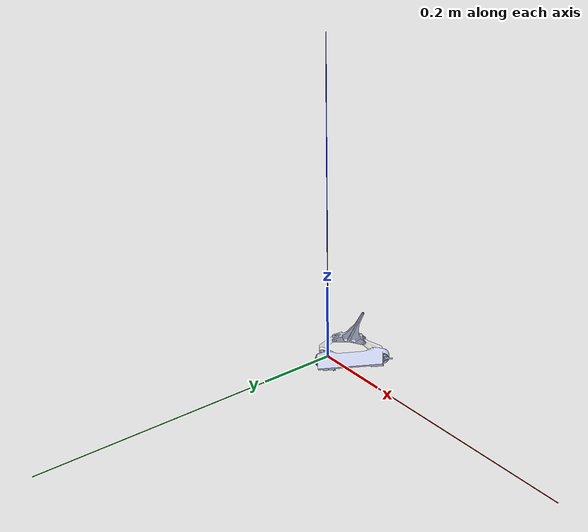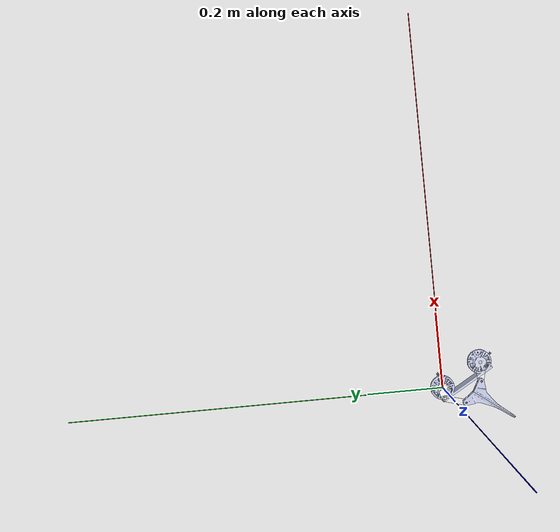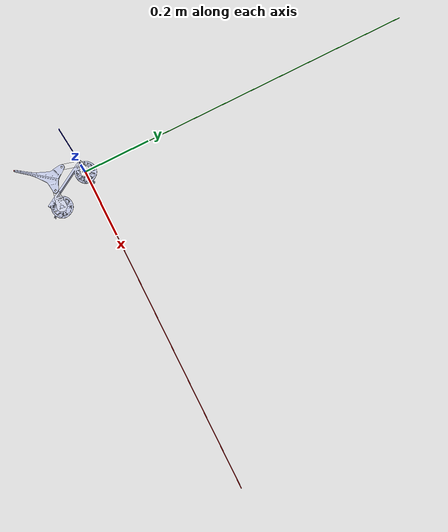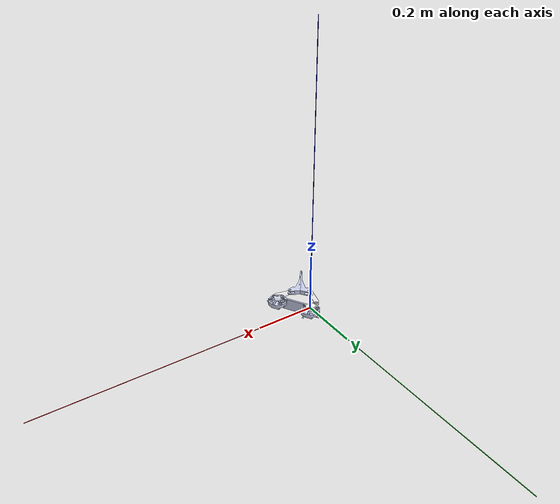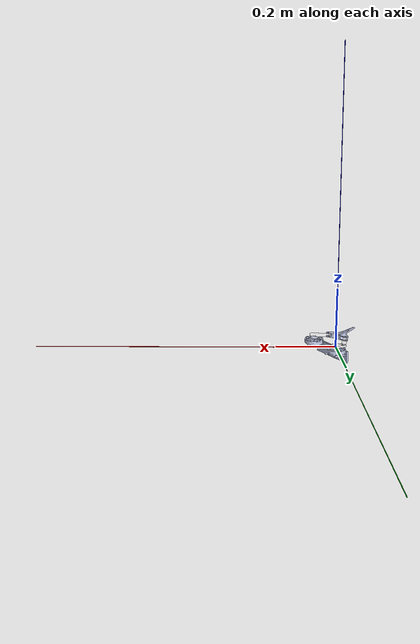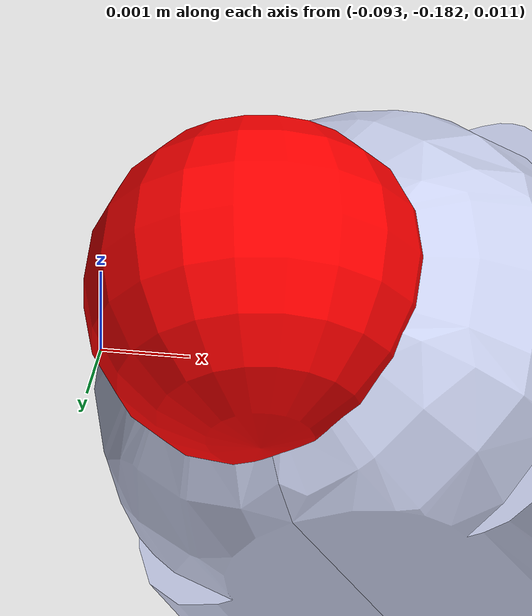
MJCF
<mujoco model="5bar">
  <compiler angle="radian"/>

  <asset>
    <mesh name="base_link" file="base_link.STL"/>
    <mesh name="bd" file="bd.STL"/>
    <mesh name="df" file="df.STL"/>
    <mesh name="cfp_f" file="cfp_f.STL"/>
    <mesh name="ac" file="ac.STL"/>
    <mesh name="cfp_c" file="cfp_c.STL"/>
  </asset>

  <worldbody>
    <geom name="x_axis" type="cylinder" fromto="0 0 0 1 0 0" size="0.001" rgba="1 0 0 1"/>
    <geom name="y_axis" type="cylinder" fromto="0 0 0 0 1 0" size="0.001" rgba="0 1 0 1"/>
    <geom name="z_axis" type="cylinder" fromto="0 0 0 0 0 1" size="0.001" rgba="0 0 1 1"/>
    <geom type="mesh" rgba="0.792157 0.819608 0.933333 1" mesh="base_link"/>
    <body name="bd">
      <inertial pos="-0.00581349 -0.000508622 0.00385706" quat="-0.0302491 0.719801 0.0314276 0.692809" mass="0.0065" diaginertia="1.10165e-06 8.16244e-07 3.27432e-07"/>
      <joint name="1" pos="0 0 0" axis="0 0 1"/>
      <geom type="mesh" rgba="1 1 1 1" mesh="bd"/>
      <body name="df" pos="-0.026459 -0.0023149 0.0085">
        <inertial pos="-0.00699491 -0.0260919 0.00576534" quat="0.561628 0.429951 -0.560398 0.430895" mass="0.0085" diaginertia="2.5096e-06 2.43627e-06 1.39512e-07"/>
        <joint name="2" pos="0 0 0" axis="0 0 1"/>
        <geom type="mesh" rgba="1 1 1 0.32" mesh="df"/>
        <body name="cfp_f" pos="-0.014112 -0.052641 0.009">
          <inertial pos="0.000991822 -0.0371965 -0.00450308" quat="0.594658 0.382345 -0.594827 0.38259" mass="0.024" diaginertia="1.36656e-05 1.29227e-05 1.1416e-06"/>
          <joint name="3" pos="0 0 0" axis="0 0 1"/>
          <geom type="mesh" rgba="0.792157 0.819608 0.933333 1" mesh="cfp_f"/>
          <site name="endeff" size="0.002" pos="-0.05031541 -0.12513065 -0.00450033" rgba="1 0 0 1"/>
        </body>
      </body>
    </body>
    <body name="ac" pos="0.060004 -0.10393 0">
      <inertial pos="-0.0139838 0.00122344 0.00911879" quat="0.0293969 0.738096 -0.0322259 0.673285" mass="0.0135" diaginertia="4.62188e-06 4.18541e-06 6.91255e-07"/>
      <joint name="4" pos="0 0 0" axis="0 0 1"/>
      <geom type="mesh" rgba="1 1 1 0.32" mesh="ac"/>
      <body name="cfp_c" pos="-0.048315 0.0042271 0.0165">
        <inertial pos="-0.0341084 -0.00768776 -0.0035" quat="-0.250948 0.661079 0.250948 0.661079" mass="0.020" diaginertia="1.35755e-05 1.27829e-05 1.17245e-06"/>
        <joint name="5" pos="0 0 0" axis="0 0 1"/>
        <geom type="mesh" rgba="0.792157 0.819608 0.933333 1" mesh="cfp_c"/>
      </body>
    </body>
  </worldbody>

  <actuator>
    <position name="B_pos" joint="1" kp="0"/>
    <velocity name="B_vel" joint="1" kv="0"/>
    <position name="A_pos" joint="4" kp="0"/>
    <velocity name="A_vel" joint="4" kv="0"/>
  </actuator>

</mujoco>
